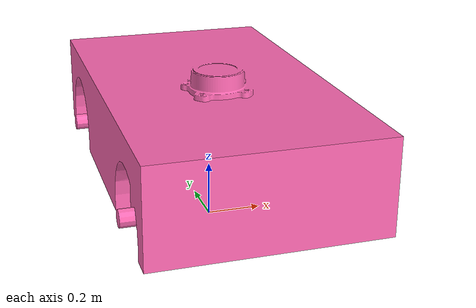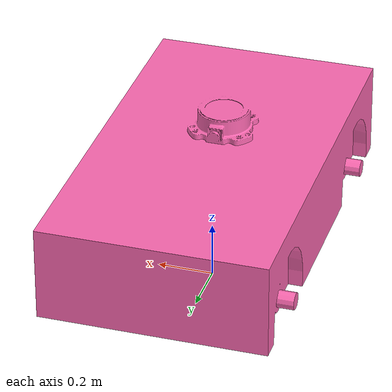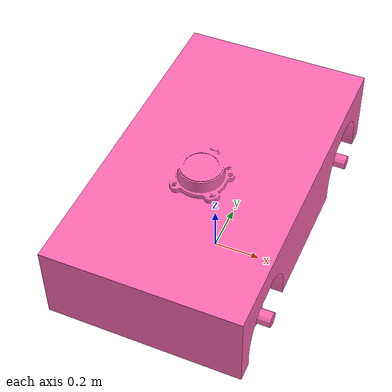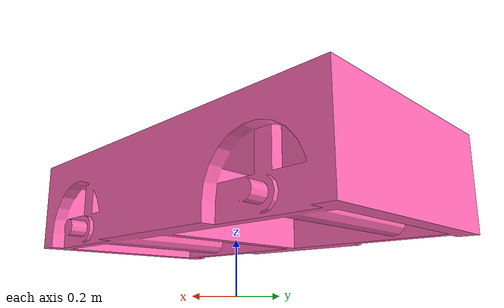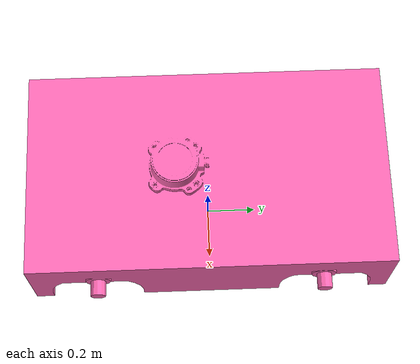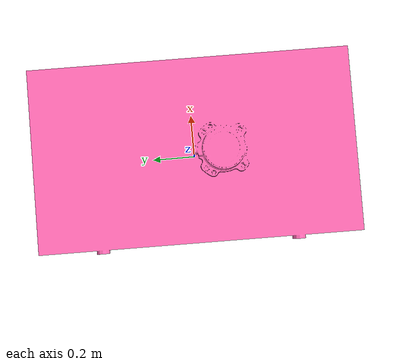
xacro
<?xml version="1.0" encoding="utf-8"?>
<robot name="mowen_zc1" xmlns:xacro="http://wiki.ros.org/xacro">

    <!-- 定义材质 -->
    <material name="BrightPink">
        <color rgba="1 0.41 0.7 1"/>
    </material>
    <material name="White">
        <color rgba="0.7 0.7 0.7 1"/>
    </material>

    <!-- 定义一个虚拟的根link, 所有坐标都基于它 -->
    <!-- 移除 ${prefix} 前缀 -->
    <link name="base_footprint"/>

    <xacro:macro name="common_link" params="name material *origin">
        <!-- 移除 ${prefix} 前缀，直接使用 ${name} -->
        <link name="${name}">
            <visual>
                <geometry>
                    <!--
                      保持原路径: package://robot_description/...
                    -->
                    <mesh filename="package://robot_description/meshes/${name}.STL"/>
                </geometry>
                <origin xyz="0 0 0" rpy="0 0 0"/>
                <material name="${material}"/>
            </visual>
            <collision>
                <geometry>
                    <mesh filename="package://robot_description/meshes/${name}.STL"/>
                </geometry>
                <origin xyz="0 0 0" rpy="0 0 0"/>
            </collision>
            <xacro:insert_block name="origin"/>
        </link>
    </xacro:macro>

    <xacro:macro name="fixed_joint" params="name parent child xyz rpy">
        <!-- 移除 joint 名称中的 ${prefix} -->
        <joint name="${name}" type="fixed">
            <!-- 移除 parent 和 child 引用中的 ${prefix} -->
            <parent link="${parent}"/>
            <child link="${child}"/>
            <origin xyz="${xyz}" rpy="${rpy}"/>
        </joint>
    </xacro:macro>

    <!-- 宏调用保持不变，但生成的名称将不再带前缀 -->
    <common_link name="base_link" material="BrightPink">
        <inertial>
            <origin xyz="0.00498 0.00005 -0.0121" rpy="0 0 0"/>
            <mass value="0.4862"/>
            <inertia
                ixx="0.00196" ixy="0.0" ixz="0.00014"
                iyy="0.00457" iyz="0.0" izz="0.00493"/>
        </inertial>
    </common_link>

    <fixed_joint name="base_joint" parent="base_footprint" child="base_link" xyz="0.0 0.0 0.0815" rpy="0 0 0"/>

</robot>
